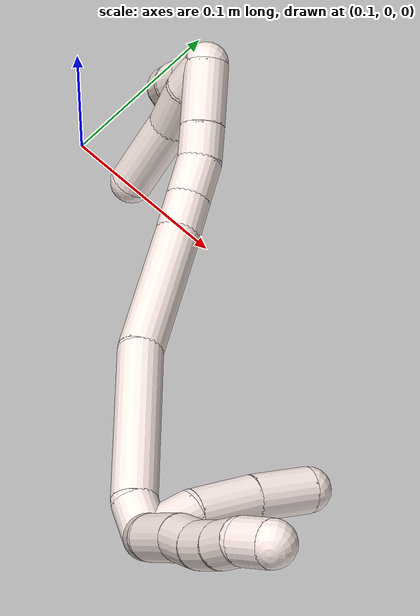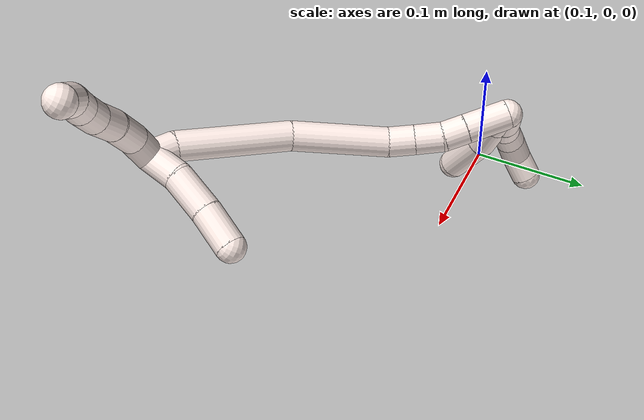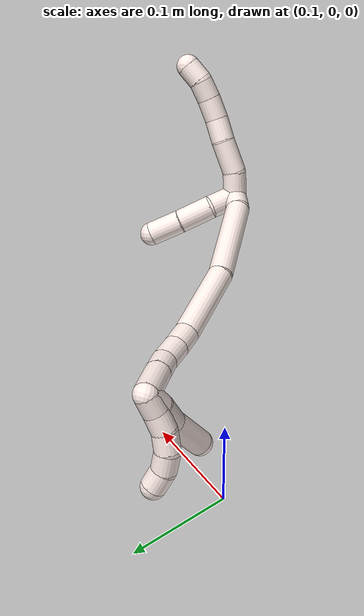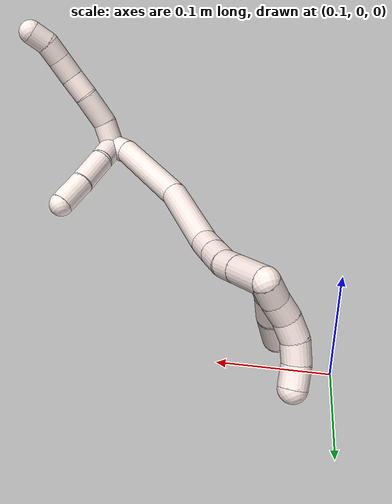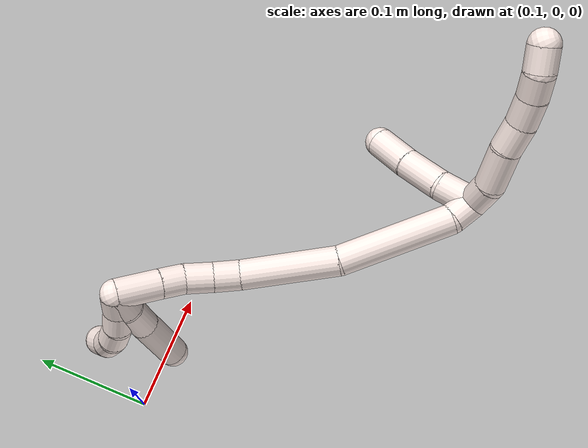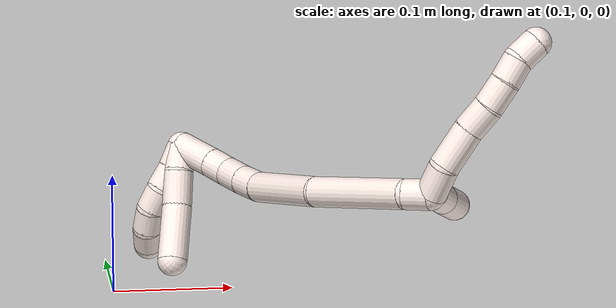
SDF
<sdf version="1.7">
 <world name="default">
  <model name="11">
   <static>0</static>
   <link name="11">
    <collision name="collision-cylinder-e_1_2_8">
     <pose>-0.00081 0.00686 0.011312 -0.545119 -0.061169 0.017103</pose>
     <geometry><cylinder><radius>0.0125</radius><length>0.026508</length></cylinder></geometry>
     <surface>
      <friction><ode><mu>1.16</mu><mu2>1.16</mu2><slip1>0</slip1><slip2>0</slip2></ode></friction>
      <contact><ode><kp>1e+06</kp><kd>1</kd><max_vel>0</max_vel><min_depth>0.001</min_depth></ode></contact>
     </surface>
    </collision>
    <visual name="visual-cylinder-e_1_2_8">
     <pose>-0.00081 0.00686 0.011312 -0.545119 -0.061169 0.017103</pose>
     <geometry><cylinder><radius>0.0125</radius><length>0.026508</length></cylinder></geometry>
     <material><ambient>1 0.933333 0.909804 1</ambient></material>
    </visual>
    <collision name="collision-cylinder-e_2_8_9">
     <pose>0.00216 0.025138 0.035551 -0.72352 0.215764 -0.08192</pose>
     <geometry><cylinder><radius>0.0125</radius><length>0.035316</length></cylinder></geometry>
     <surface>
      <friction><ode><mu>1.16</mu><mu2>1.16</mu2><slip1>0</slip1><slip2>0</slip2></ode></friction>
      <contact><ode><kp>1e+06</kp><kd>1</kd><max_vel>0</max_vel><min_depth>0.001</min_depth></ode></contact>
     </surface>
    </collision>
    <visual name="visual-cylinder-e_2_8_9">
     <pose>0.00216 0.025138 0.035551 -0.72352 0.215764 -0.08192</pose>
     <geometry><cylinder><radius>0.0125</radius><length>0.035316</length></cylinder></geometry>
     <material><ambient>1 0.933333 0.909804 1</ambient></material>
    </visual>
    <collision name="collision-cylinder-e_3_9_10">
     <pose>0.009137 0.042898 0.058335 -0.571664 0.266216 -0.07866</pose>
     <geometry><cylinder><radius>0.0125</radius><length>0.024296</length></cylinder></geometry>
     <surface>
      <friction><ode><mu>1.16</mu><mu2>1.16</mu2><slip1>0</slip1><slip2>0</slip2></ode></friction>
      <contact><ode><kp>1e+06</kp><kd>1</kd><max_vel>0</max_vel><min_depth>0.001</min_depth></ode></contact>
     </surface>
    </collision>
    <visual name="visual-cylinder-e_3_9_10">
     <pose>0.009137 0.042898 0.058335 -0.571664 0.266216 -0.07866</pose>
     <geometry><cylinder><radius>0.0125</radius><length>0.024296</length></cylinder></geometry>
     <material><ambient>1 0.933333 0.909804 1</ambient></material>
    </visual>
    <collision name="collision-cylinder-e_4_10_11">
     <pose>0.014964 0.056933 0.076681 -0.736299 0.225753 -0.087397</pose>
     <geometry><cylinder><radius>0.0125</radius><length>0.02351</length></cylinder></geometry>
     <surface>
      <friction><ode><mu>1.16</mu><mu2>1.16</mu2><slip1>0</slip1><slip2>0</slip2></ode></friction>
      <contact><ode><kp>1e+06</kp><kd>1</kd><max_vel>0</max_vel><min_depth>0.001</min_depth></ode></contact>
     </surface>
    </collision>
    <visual name="visual-cylinder-e_4_10_11">
     <pose>0.014964 0.056933 0.076681 -0.736299 0.225753 -0.087397</pose>
     <geometry><cylinder><radius>0.0125</radius><length>0.02351</length></cylinder></geometry>
     <material><ambient>1 0.933333 0.909804 1</ambient></material>
    </visual>
    <collision name="collision-cylinder-e_5_11_12">
     <pose>0.019856 0.072058 0.091679 -0.85151 0.225004 -0.102381</pose>
     <geometry><cylinder><radius>0.0125</radius><length>0.020268</length></cylinder></geometry>
     <surface>
      <friction><ode><mu>1.16</mu><mu2>1.16</mu2><slip1>0</slip1><slip2>0</slip2></ode></friction>
      <contact><ode><kp>1e+06</kp><kd>1</kd><max_vel>0</max_vel><min_depth>0.001</min_depth></ode></contact>
     </surface>
    </collision>
    <visual name="visual-cylinder-e_5_11_12">
     <pose>0.019856 0.072058 0.091679 -0.85151 0.225004 -0.102381</pose>
     <geometry><cylinder><radius>0.0125</radius><length>0.020268</length></cylinder></geometry>
     <material><ambient>1 0.933333 0.909804 1</ambient></material>
    </visual>
    <collision name="collision-cylinder-e_6_12_6">
     <pose>0.027461 0.086023 0.103644 -0.874973 0.560613 -0.267687</pose>
     <geometry><cylinder><radius>0.0125</radius><length>0.020101</length></cylinder></geometry>
     <surface>
      <friction><ode><mu>1.16</mu><mu2>1.16</mu2><slip1>0</slip1><slip2>0</slip2></ode></friction>
      <contact><ode><kp>1e+06</kp><kd>1</kd><max_vel>0</max_vel><min_depth>0.001</min_depth></ode></contact>
     </surface>
    </collision>
    <visual name="visual-cylinder-e_6_12_6">
     <pose>0.027461 0.086023 0.103644 -0.874973 0.560613 -0.267687</pose>
     <geometry><cylinder><radius>0.0125</radius><length>0.020101</length></cylinder></geometry>
     <material><ambient>1 0.933333 0.909804 1</ambient></material>
    </visual>
    <collision name="collision-cylinder-e_1_2_13">
     <pose>0.007809 0.007717 -0.009701 -2.46964 0.562173 -1.38175</pose>
     <geometry><cylinder><radius>0.0125</radius><length>0.029302</length></cylinder></geometry>
     <surface>
      <friction><ode><mu>1.16</mu><mu2>1.16</mu2><slip1>0</slip1><slip2>0</slip2></ode></friction>
      <contact><ode><kp>1e+06</kp><kd>1</kd><max_vel>0</max_vel><min_depth>0.001</min_depth></ode></contact>
     </surface>
    </collision>
    <visual name="visual-cylinder-e_1_2_13">
     <pose>0.007809 0.007717 -0.009701 -2.46964 0.562173 -1.38175</pose>
     <geometry><cylinder><radius>0.0125</radius><length>0.029302</length></cylinder></geometry>
     <material><ambient>1 0.933333 0.909804 1</ambient></material>
    </visual>
    <collision name="collision-cylinder-e_2_13_14">
     <pose>0.028218 0.02176 -0.030873 -2.63752 0.765972 -2.00412</pose>
     <geometry><cylinder><radius>0.0125</radius><length>0.03635</length></cylinder></geometry>
     <surface>
      <friction><ode><mu>1.16</mu><mu2>1.16</mu2><slip1>0</slip1><slip2>0</slip2></ode></friction>
      <contact><ode><kp>1e+06</kp><kd>1</kd><max_vel>0</max_vel><min_depth>0.001</min_depth></ode></contact>
     </surface>
    </collision>
    <visual name="visual-cylinder-e_2_13_14">
     <pose>0.028218 0.02176 -0.030873 -2.63752 0.765972 -2.00412</pose>
     <geometry><cylinder><radius>0.0125</radius><length>0.03635</length></cylinder></geometry>
     <material><ambient>1 0.933333 0.909804 1</ambient></material>
    </visual>
    <collision name="collision-cylinder-e_3_14_5">
     <pose>0.053685 0.033439 -0.052379 -2.65174 0.84688 -2.12891</pose>
     <geometry><cylinder><radius>0.0125</radius><length>0.034348</length></cylinder></geometry>
     <surface>
      <friction><ode><mu>1.16</mu><mu2>1.16</mu2><slip1>0</slip1><slip2>0</slip2></ode></friction>
      <contact><ode><kp>1e+06</kp><kd>1</kd><max_vel>0</max_vel><min_depth>0.001</min_depth></ode></contact>
     </surface>
    </collision>
    <visual name="visual-cylinder-e_3_14_5">
     <pose>0.053685 0.033439 -0.052379 -2.65174 0.84688 -2.12891</pose>
     <geometry><cylinder><radius>0.0125</radius><length>0.034348</length></cylinder></geometry>
     <material><ambient>1 0.933333 0.909804 1</ambient></material>
    </visual>
    <collision name="collision-cylinder-e_1_2_15">
     <pose>-0.006621 0.002605 -0.008216 -2.8346 -0.654989 2.28691</pose>
     <geometry><cylinder><radius>0.0125</radius><length>0.021737</length></cylinder></geometry>
     <surface>
      <friction><ode><mu>1.16</mu><mu2>1.16</mu2><slip1>0</slip1><slip2>0</slip2></ode></friction>
      <contact><ode><kp>1e+06</kp><kd>1</kd><max_vel>0</max_vel><min_depth>0.001</min_depth></ode></contact>
     </surface>
    </collision>
    <visual name="visual-cylinder-e_1_2_15">
     <pose>-0.006621 0.002605 -0.008216 -2.8346 -0.654989 2.28691</pose>
     <geometry><cylinder><radius>0.0125</radius><length>0.021737</length></cylinder></geometry>
     <material><ambient>1 0.933333 0.909804 1</ambient></material>
    </visual>
    <collision name="collision-cylinder-e_2_15_16">
     <pose>-0.028444 0.022606 -0.057982 -2.74508 -0.325504 1.37047</pose>
     <geometry><cylinder><radius>0.0125</radius><length>0.095081</length></cylinder></geometry>
     <surface>
      <friction><ode><mu>1.16</mu><mu2>1.16</mu2><slip1>0</slip1><slip2>0</slip2></ode></friction>
      <contact><ode><kp>1e+06</kp><kd>1</kd><max_vel>0</max_vel><min_depth>0.001</min_depth></ode></contact>
     </surface>
    </collision>
    <visual name="visual-cylinder-e_2_15_16">
     <pose>-0.028444 0.022606 -0.057982 -2.74508 -0.325504 1.37047</pose>
     <geometry><cylinder><radius>0.0125</radius><length>0.095081</length></cylinder></geometry>
     <material><ambient>1 0.933333 0.909804 1</ambient></material>
    </visual>
    <collision name="collision-cylinder-e_3_16_17">
     <pose>-0.048397 0.058384 -0.135104 -2.66465 -0.118066 0.47698</pose>
     <geometry><cylinder><radius>0.0125</radius><length>0.080643</length></cylinder></geometry>
     <surface>
      <friction><ode><mu>1.16</mu><mu2>1.16</mu2><slip1>0</slip1><slip2>0</slip2></ode></friction>
      <contact><ode><kp>1e+06</kp><kd>1</kd><max_vel>0</max_vel><min_depth>0.001</min_depth></ode></contact>
     </surface>
    </collision>
    <visual name="visual-cylinder-e_3_16_17">
     <pose>-0.048397 0.058384 -0.135104 -2.66465 -0.118066 0.47698</pose>
     <geometry><cylinder><radius>0.0125</radius><length>0.080643</length></cylinder></geometry>
     <material><ambient>1 0.933333 0.909804 1</ambient></material>
    </visual>
    <collision name="collision-cylinder-e_4_17_18">
     <pose>-0.055196 0.083624 -0.179226 -2.46552 -0.184918 0.515794</pose>
     <geometry><cylinder><radius>0.0125</radius><length>0.022301</length></cylinder></geometry>
     <surface>
      <friction><ode><mu>1.16</mu><mu2>1.16</mu2><slip1>0</slip1><slip2>0</slip2></ode></friction>
      <contact><ode><kp>1e+06</kp><kd>1</kd><max_vel>0</max_vel><min_depth>0.001</min_depth></ode></contact>
     </surface>
    </collision>
    <visual name="visual-cylinder-e_4_17_18">
     <pose>-0.055196 0.083624 -0.179226 -2.46552 -0.184918 0.515794</pose>
     <geometry><cylinder><radius>0.0125</radius><length>0.022301</length></cylinder></geometry>
     <material><ambient>1 0.933333 0.909804 1</ambient></material>
    </visual>
    <collision name="collision-cylinder-e_5_18_19">
     <pose>-0.059385 0.09814 -0.196466 -2.41929 -0.182529 0.475425</pose>
     <geometry><cylinder><radius>0.0125</radius><length>0.023557</length></cylinder></geometry>
     <surface>
      <friction><ode><mu>1.16</mu><mu2>1.16</mu2><slip1>0</slip1><slip2>0</slip2></ode></friction>
      <contact><ode><kp>1e+06</kp><kd>1</kd><max_vel>0</max_vel><min_depth>0.001</min_depth></ode></contact>
     </surface>
    </collision>
    <visual name="visual-cylinder-e_5_18_19">
     <pose>-0.059385 0.09814 -0.196466 -2.41929 -0.182529 0.475425</pose>
     <geometry><cylinder><radius>0.0125</radius><length>0.023557</length></cylinder></geometry>
     <material><ambient>1 0.933333 0.909804 1</ambient></material>
    </visual>
    <collision name="collision-cylinder-e_6_19_20">
     <pose>-0.065511 0.112378 -0.211584 -2.34446 -0.409098 0.915473</pose>
     <geometry><cylinder><radius>0.0125</radius><length>0.020053</length></cylinder></geometry>
     <surface>
      <friction><ode><mu>1.16</mu><mu2>1.16</mu2><slip1>0</slip1><slip2>0</slip2></ode></friction>
      <contact><ode><kp>1e+06</kp><kd>1</kd><max_vel>0</max_vel><min_depth>0.001</min_depth></ode></contact>
     </surface>
    </collision>
    <visual name="visual-cylinder-e_6_19_20">
     <pose>-0.065511 0.112378 -0.211584 -2.34446 -0.409098 0.915473</pose>
     <geometry><cylinder><radius>0.0125</radius><length>0.020053</length></cylinder></geometry>
     <material><ambient>1 0.933333 0.909804 1</ambient></material>
    </visual>
    <collision name="collision-cylinder-e_7_20_1">
     <pose>-0.076934 0.130694 -0.229945 -2.36453 -0.41801 0.956142</pose>
     <geometry><cylinder><radius>0.0125</radius><length>0.036628</length></cylinder></geometry>
     <surface>
      <friction><ode><mu>1.16</mu><mu2>1.16</mu2><slip1>0</slip1><slip2>0</slip2></ode></friction>
      <contact><ode><kp>1e+06</kp><kd>1</kd><max_vel>0</max_vel><min_depth>0.001</min_depth></ode></contact>
     </surface>
    </collision>
    <visual name="visual-cylinder-e_7_20_1">
     <pose>-0.076934 0.130694 -0.229945 -2.36453 -0.41801 0.956142</pose>
     <geometry><cylinder><radius>0.0125</radius><length>0.036628</length></cylinder></geometry>
     <material><ambient>1 0.933333 0.909804 1</ambient></material>
    </visual>
    <collision name="collision-cylinder-e_1_1_21">
     <pose>-0.085426 0.134508 -0.247889 2.21991 -0.106014 -0.212916</pose>
     <geometry><cylinder><radius>0.0125</radius><length>0.02</length></cylinder></geometry>
     <surface>
      <friction><ode><mu>1.16</mu><mu2>1.16</mu2><slip1>0</slip1><slip2>0</slip2></ode></friction>
      <contact><ode><kp>1e+06</kp><kd>1</kd><max_vel>0</max_vel><min_depth>0.001</min_depth></ode></contact>
     </surface>
    </collision>
    <visual name="visual-cylinder-e_1_1_21">
     <pose>-0.085426 0.134508 -0.247889 2.21991 -0.106014 -0.212916</pose>
     <geometry><cylinder><radius>0.0125</radius><length>0.02</length></cylinder></geometry>
     <material><ambient>1 0.933333 0.909804 1</ambient></material>
    </visual>
    <collision name="collision-cylinder-e_2_21_22">
     <pose>-0.088477 0.11947 -0.260636 2.32879 -0.20064 -0.459528</pose>
     <geometry><cylinder><radius>0.0125</radius><length>0.02</length></cylinder></geometry>
     <surface>
      <friction><ode><mu>1.16</mu><mu2>1.16</mu2><slip1>0</slip1><slip2>0</slip2></ode></friction>
      <contact><ode><kp>1e+06</kp><kd>1</kd><max_vel>0</max_vel><min_depth>0.001</min_depth></ode></contact>
     </surface>
    </collision>
    <visual name="visual-cylinder-e_2_21_22">
     <pose>-0.088477 0.11947 -0.260636 2.32879 -0.20064 -0.459528</pose>
     <geometry><cylinder><radius>0.0125</radius><length>0.02</length></cylinder></geometry>
     <material><ambient>1 0.933333 0.909804 1</ambient></material>
    </visual>
    <collision name="collision-cylinder-e_3_22_23">
     <pose>-0.090671 0.106688 -0.275611 2.53914 -0.020094 -0.064657</pose>
     <geometry><cylinder><radius>0.0125</radius><length>0.02</length></cylinder></geometry>
     <surface>
      <friction><ode><mu>1.16</mu><mu2>1.16</mu2><slip1>0</slip1><slip2>0</slip2></ode></friction>
      <contact><ode><kp>1e+06</kp><kd>1</kd><max_vel>0</max_vel><min_depth>0.001</min_depth></ode></contact>
     </surface>
    </collision>
    <visual name="visual-cylinder-e_3_22_23">
     <pose>-0.090671 0.106688 -0.275611 2.53914 -0.020094 -0.064657</pose>
     <geometry><cylinder><radius>0.0125</radius><length>0.02</length></cylinder></geometry>
     <material><ambient>1 0.933333 0.909804 1</ambient></material>
    </visual>
    <collision name="collision-cylinder-e_4_23_24">
     <pose>-0.0879 0.096485 -0.29225 2.64636 0.3018 1.08302</pose>
     <geometry><cylinder><radius>0.0125</radius><length>0.02</length></cylinder></geometry>
     <surface>
      <friction><ode><mu>1.16</mu><mu2>1.16</mu2><slip1>0</slip1><slip2>0</slip2></ode></friction>
      <contact><ode><kp>1e+06</kp><kd>1</kd><max_vel>0</max_vel><min_depth>0.001</min_depth></ode></contact>
     </surface>
    </collision>
    <visual name="visual-cylinder-e_4_23_24">
     <pose>-0.0879 0.096485 -0.29225 2.64636 0.3018 1.08302</pose>
     <geometry><cylinder><radius>0.0125</radius><length>0.02</length></cylinder></geometry>
     <material><ambient>1 0.933333 0.909804 1</ambient></material>
    </visual>
    <collision name="collision-cylinder-e_5_24_4">
     <pose>-0.079692 0.089643 -0.308853 2.86766 0.550989 2.23426</pose>
     <geometry><cylinder><radius>0.0125</radius><length>0.02</length></cylinder></geometry>
     <surface>
      <friction><ode><mu>1.16</mu><mu2>1.16</mu2><slip1>0</slip1><slip2>0</slip2></ode></friction>
      <contact><ode><kp>1e+06</kp><kd>1</kd><max_vel>0</max_vel><min_depth>0.001</min_depth></ode></contact>
     </surface>
    </collision>
    <visual name="visual-cylinder-e_5_24_4">
     <pose>-0.079692 0.089643 -0.308853 2.86766 0.550989 2.23426</pose>
     <geometry><cylinder><radius>0.0125</radius><length>0.02</length></cylinder></geometry>
     <material><ambient>1 0.933333 0.909804 1</ambient></material>
    </visual>
    <collision name="collision-cylinder-e_1_1_25">
     <pose>-0.08463 0.131632 -0.244693 1.82586 -0.023448 -0.030345</pose>
     <geometry><cylinder><radius>0.0125</radius><length>0.022324</length></cylinder></geometry>
     <surface>
      <friction><ode><mu>1.16</mu><mu2>1.16</mu2><slip1>0</slip1><slip2>0</slip2></ode></friction>
      <contact><ode><kp>1e+06</kp><kd>1</kd><max_vel>0</max_vel><min_depth>0.001</min_depth></ode></contact>
     </surface>
    </collision>
    <visual name="visual-cylinder-e_1_1_25">
     <pose>-0.08463 0.131632 -0.244693 1.82586 -0.023448 -0.030345</pose>
     <geometry><cylinder><radius>0.0125</radius><length>0.022324</length></cylinder></geometry>
     <material><ambient>1 0.933333 0.909804 1</ambient></material>
    </visual>
    <collision name="collision-cylinder-e_2_25_26">
     <pose>-0.082963 0.107055 -0.252482 1.91716 0.130861 0.18608</pose>
     <geometry><cylinder><radius>0.0125</radius><length>0.029549</length></cylinder></geometry>
     <surface>
      <friction><ode><mu>1.16</mu><mu2>1.16</mu2><slip1>0</slip1><slip2>0</slip2></ode></friction>
      <contact><ode><kp>1e+06</kp><kd>1</kd><max_vel>0</max_vel><min_depth>0.001</min_depth></ode></contact>
     </surface>
    </collision>
    <visual name="visual-cylinder-e_2_25_26">
     <pose>-0.082963 0.107055 -0.252482 1.91716 0.130861 0.18608</pose>
     <geometry><cylinder><radius>0.0125</radius><length>0.029549</length></cylinder></geometry>
     <material><ambient>1 0.933333 0.909804 1</ambient></material>
    </visual>
    <collision name="collision-cylinder-e_3_26_3">
     <pose>-0.08076 0.069732 -0.262413 1.77835 0.011459 0.014124</pose>
     <geometry><cylinder><radius>0.0125</radius><length>0.048126</length></cylinder></geometry>
     <surface>
      <friction><ode><mu>1.16</mu><mu2>1.16</mu2><slip1>0</slip1><slip2>0</slip2></ode></friction>
      <contact><ode><kp>1e+06</kp><kd>1</kd><max_vel>0</max_vel><min_depth>0.001</min_depth></ode></contact>
     </surface>
    </collision>
    <visual name="visual-cylinder-e_3_26_3">
     <pose>-0.08076 0.069732 -0.262413 1.77835 0.011459 0.014124</pose>
     <geometry><cylinder><radius>0.0125</radius><length>0.048126</length></cylinder></geometry>
     <material><ambient>1 0.933333 0.909804 1</ambient></material>
    </visual>
    <collision name="collision-sphere-3">
     <pose>-0.080484 0.046186 -0.267371 0 -0 0</pose>
     <geometry><sphere><radius>0.0125</radius></sphere></geometry>
     <surface>
      <friction><ode><mu>1.16</mu><mu2>1.16</mu2><slip1>0</slip1><slip2>0</slip2></ode></friction>
      <contact><ode><kp>1e+06</kp><kd>1</kd><max_vel>0</max_vel><min_depth>0.001</min_depth></ode></contact>
     </surface>
    </collision>
    <visual name="visual-sphere-3">
     <pose>-0.080484 0.046186 -0.267371 0 -0 0</pose>
     <geometry><sphere><radius>0.0125</radius></sphere></geometry>
     <material><ambient>1 0.933333 0.909804 1</ambient></material>
    </visual>
    <collision name="collision-sphere-26">
     <pose>-0.081036 0.093277 -0.257455 0 -0 0</pose>
     <geometry><sphere><radius>0.0125</radius></sphere></geometry>
     <surface>
      <friction><ode><mu>1.16</mu><mu2>1.16</mu2><slip1>0</slip1><slip2>0</slip2></ode></friction>
      <contact><ode><kp>1e+06</kp><kd>1</kd><max_vel>0</max_vel><min_depth>0.001</min_depth></ode></contact>
     </surface>
    </collision>
    <visual name="visual-sphere-26">
     <pose>-0.081036 0.093277 -0.257455 0 -0 0</pose>
     <geometry><sphere><radius>0.0125</radius></sphere></geometry>
     <material><ambient>1 0.933333 0.909804 1</ambient></material>
    </visual>
    <collision name="collision-sphere-25">
     <pose>-0.084891 0.120834 -0.247509 0 -0 0</pose>
     <geometry><sphere><radius>0.0125</radius></sphere></geometry>
     <surface>
      <friction><ode><mu>1.16</mu><mu2>1.16</mu2><slip1>0</slip1><slip2>0</slip2></ode></friction>
      <contact><ode><kp>1e+06</kp><kd>1</kd><max_vel>0</max_vel><min_depth>0.001</min_depth></ode></contact>
     </surface>
    </collision>
    <visual name="visual-sphere-25">
     <pose>-0.084891 0.120834 -0.247509 0 -0 0</pose>
     <geometry><sphere><radius>0.0125</radius></sphere></geometry>
     <material><ambient>1 0.933333 0.909804 1</ambient></material>
    </visual>
    <collision name="collision-sphere-4">
     <pose>-0.074457 0.087338 -0.317056 0 -0 0</pose>
     <geometry><sphere><radius>0.0125</radius></sphere></geometry>
     <surface>
      <friction><ode><mu>1.16</mu><mu2>1.16</mu2><slip1>0</slip1><slip2>0</slip2></ode></friction>
      <contact><ode><kp>1e+06</kp><kd>1</kd><max_vel>0</max_vel><min_depth>0.001</min_depth></ode></contact>
     </surface>
    </collision>
    <visual name="visual-sphere-4">
     <pose>-0.074457 0.087338 -0.317056 0 -0 0</pose>
     <geometry><sphere><radius>0.0125</radius></sphere></geometry>
     <material><ambient>1 0.933333 0.909804 1</ambient></material>
    </visual>
    <collision name="collision-sphere-24">
     <pose>-0.084927 0.091948 -0.300651 0 -0 0</pose>
     <geometry><sphere><radius>0.0125</radius></sphere></geometry>
     <surface>
      <friction><ode><mu>1.16</mu><mu2>1.16</mu2><slip1>0</slip1><slip2>0</slip2></ode></friction>
      <contact><ode><kp>1e+06</kp><kd>1</kd><max_vel>0</max_vel><min_depth>0.001</min_depth></ode></contact>
     </surface>
    </collision>
    <visual name="visual-sphere-24">
     <pose>-0.084927 0.091948 -0.300651 0 -0 0</pose>
     <geometry><sphere><radius>0.0125</radius></sphere></geometry>
     <material><ambient>1 0.933333 0.909804 1</ambient></material>
    </visual>
    <collision name="collision-sphere-23">
     <pose>-0.090872 0.101023 -0.283849 0 -0 0</pose>
     <geometry><sphere><radius>0.0125</radius></sphere></geometry>
     <surface>
      <friction><ode><mu>1.16</mu><mu2>1.16</mu2><slip1>0</slip1><slip2>0</slip2></ode></friction>
      <contact><ode><kp>1e+06</kp><kd>1</kd><max_vel>0</max_vel><min_depth>0.001</min_depth></ode></contact>
     </surface>
    </collision>
    <visual name="visual-sphere-23">
     <pose>-0.090872 0.101023 -0.283849 0 -0 0</pose>
     <geometry><sphere><radius>0.0125</radius></sphere></geometry>
     <material><ambient>1 0.933333 0.909804 1</ambient></material>
    </visual>
    <collision name="collision-sphere-22">
     <pose>-0.09047 0.112354 -0.267373 0 -0 0</pose>
     <geometry><sphere><radius>0.0125</radius></sphere></geometry>
     <surface>
      <friction><ode><mu>1.16</mu><mu2>1.16</mu2><slip1>0</slip1><slip2>0</slip2></ode></friction>
      <contact><ode><kp>1e+06</kp><kd>1</kd><max_vel>0</max_vel><min_depth>0.001</min_depth></ode></contact>
     </surface>
    </collision>
    <visual name="visual-sphere-22">
     <pose>-0.09047 0.112354 -0.267373 0 -0 0</pose>
     <geometry><sphere><radius>0.0125</radius></sphere></geometry>
     <material><ambient>1 0.933333 0.909804 1</ambient></material>
    </visual>
    <collision name="collision-sphere-21">
     <pose>-0.086484 0.126587 -0.2539 0 -0 0</pose>
     <geometry><sphere><radius>0.0125</radius></sphere></geometry>
     <surface>
      <friction><ode><mu>1.16</mu><mu2>1.16</mu2><slip1>0</slip1><slip2>0</slip2></ode></friction>
      <contact><ode><kp>1e+06</kp><kd>1</kd><max_vel>0</max_vel><min_depth>0.001</min_depth></ode></contact>
     </surface>
    </collision>
    <visual name="visual-sphere-21">
     <pose>-0.086484 0.126587 -0.2539 0 -0 0</pose>
     <geometry><sphere><radius>0.0125</radius></sphere></geometry>
     <material><ambient>1 0.933333 0.909804 1</ambient></material>
    </visual>
    <collision name="collision-sphere-1">
     <pose>-0.084368 0.14243 -0.241878 0 -0 0</pose>
     <geometry><sphere><radius>0.0125</radius></sphere></geometry>
     <surface>
      <friction><ode><mu>1.16</mu><mu2>1.16</mu2><slip1>0</slip1><slip2>0</slip2></ode></friction>
      <contact><ode><kp>1e+06</kp><kd>1</kd><max_vel>0</max_vel><min_depth>0.001</min_depth></ode></contact>
     </surface>
    </collision>
    <visual name="visual-sphere-1">
     <pose>-0.084368 0.14243 -0.241878 0 -0 0</pose>
     <geometry><sphere><radius>0.0125</radius></sphere></geometry>
     <material><ambient>1 0.933333 0.909804 1</ambient></material>
    </visual>
    <collision name="collision-sphere-12">
     <pose>0.022117 0.07949 0.098187 0 -0 0</pose>
     <geometry><sphere><radius>0.0125</radius></sphere></geometry>
     <surface>
      <friction><ode><mu>1.16</mu><mu2>1.16</mu2><slip1>0</slip1><slip2>0</slip2></ode></friction>
      <contact><ode><kp>1e+06</kp><kd>1</kd><max_vel>0</max_vel><min_depth>0.001</min_depth></ode></contact>
     </surface>
    </collision>
    <visual name="visual-sphere-12">
     <pose>0.022117 0.07949 0.098187 0 -0 0</pose>
     <geometry><sphere><radius>0.0125</radius></sphere></geometry>
     <material><ambient>1 0.933333 0.909804 1</ambient></material>
    </visual>
    <collision name="collision-sphere-11">
     <pose>0.017595 0.064627 0.08517 0 -0 0</pose>
     <geometry><sphere><radius>0.0125</radius></sphere></geometry>
     <surface>
      <friction><ode><mu>1.16</mu><mu2>1.16</mu2><slip1>0</slip1><slip2>0</slip2></ode></friction>
      <contact><ode><kp>1e+06</kp><kd>1</kd><max_vel>0</max_vel><min_depth>0.001</min_depth></ode></contact>
     </surface>
    </collision>
    <visual name="visual-sphere-11">
     <pose>0.017595 0.064627 0.08517 0 -0 0</pose>
     <geometry><sphere><radius>0.0125</radius></sphere></geometry>
     <material><ambient>1 0.933333 0.909804 1</ambient></material>
    </visual>
    <collision name="collision-sphere-10">
     <pose>0.012332 0.049239 0.068192 0 -0 0</pose>
     <geometry><sphere><radius>0.0125</radius></sphere></geometry>
     <surface>
      <friction><ode><mu>1.16</mu><mu2>1.16</mu2><slip1>0</slip1><slip2>0</slip2></ode></friction>
      <contact><ode><kp>1e+06</kp><kd>1</kd><max_vel>0</max_vel><min_depth>0.001</min_depth></ode></contact>
     </surface>
    </collision>
    <visual name="visual-sphere-10">
     <pose>0.012332 0.049239 0.068192 0 -0 0</pose>
     <geometry><sphere><radius>0.0125</radius></sphere></geometry>
     <material><ambient>1 0.933333 0.909804 1</ambient></material>
    </visual>
    <collision name="collision-sphere-9">
     <pose>0.005941 0.036557 0.048479 0 -0 0</pose>
     <geometry><sphere><radius>0.0125</radius></sphere></geometry>
     <surface>
      <friction><ode><mu>1.16</mu><mu2>1.16</mu2><slip1>0</slip1><slip2>0</slip2></ode></friction>
      <contact><ode><kp>1e+06</kp><kd>1</kd><max_vel>0</max_vel><min_depth>0.001</min_depth></ode></contact>
     </surface>
    </collision>
    <visual name="visual-sphere-9">
     <pose>0.005941 0.036557 0.048479 0 -0 0</pose>
     <geometry><sphere><radius>0.0125</radius></sphere></geometry>
     <material><ambient>1 0.933333 0.909804 1</ambient></material>
    </visual>
    <collision name="collision-sphere-2">
     <geometry><sphere><radius>0.0125</radius></sphere></geometry>
     <surface>
      <friction><ode><mu>1.16</mu><mu2>1.16</mu2><slip1>0</slip1><slip2>0</slip2></ode></friction>
      <contact><ode><kp>1e+06</kp><kd>1</kd><max_vel>0</max_vel><min_depth>0.001</min_depth></ode></contact>
     </surface>
    </collision>
    <visual name="visual-sphere-2">
     <geometry><sphere><radius>0.0125</radius></sphere></geometry>
     <material><ambient>1 0.933333 0.909804 1</ambient></material>
    </visual>
    <collision name="collision-sphere-19">
     <pose>-0.061523 0.105797 -0.205156 0 -0 0</pose>
     <geometry><sphere><radius>0.0125</radius></sphere></geometry>
     <surface>
      <friction><ode><mu>1.16</mu><mu2>1.16</mu2><slip1>0</slip1><slip2>0</slip2></ode></friction>
      <contact><ode><kp>1e+06</kp><kd>1</kd><max_vel>0</max_vel><min_depth>0.001</min_depth></ode></contact>
     </surface>
    </collision>
    <visual name="visual-sphere-19">
     <pose>-0.061523 0.105797 -0.205156 0 -0 0</pose>
     <geometry><sphere><radius>0.0125</radius></sphere></geometry>
     <material><ambient>1 0.933333 0.909804 1</ambient></material>
    </visual>
    <collision name="collision-sphere-8">
     <pose>-0.00162 0.013719 0.022624 0 -0 0</pose>
     <geometry><sphere><radius>0.0125</radius></sphere></geometry>
     <surface>
      <friction><ode><mu>1.16</mu><mu2>1.16</mu2><slip1>0</slip1><slip2>0</slip2></ode></friction>
      <contact><ode><kp>1e+06</kp><kd>1</kd><max_vel>0</max_vel><min_depth>0.001</min_depth></ode></contact>
     </surface>
    </collision>
    <visual name="visual-sphere-8">
     <pose>-0.00162 0.013719 0.022624 0 -0 0</pose>
     <geometry><sphere><radius>0.0125</radius></sphere></geometry>
     <material><ambient>1 0.933333 0.909804 1</ambient></material>
    </visual>
    <collision name="collision-sphere-6">
     <pose>0.032805 0.092557 0.1091 0 -0 0</pose>
     <geometry><sphere><radius>0.0125</radius></sphere></geometry>
     <surface>
      <friction><ode><mu>1.16</mu><mu2>1.16</mu2><slip1>0</slip1><slip2>0</slip2></ode></friction>
      <contact><ode><kp>1e+06</kp><kd>1</kd><max_vel>0</max_vel><min_depth>0.001</min_depth></ode></contact>
     </surface>
    </collision>
    <visual name="visual-sphere-6">
     <pose>0.032805 0.092557 0.1091 0 -0 0</pose>
     <geometry><sphere><radius>0.0125</radius></sphere></geometry>
     <material><ambient>1 0.933333 0.909804 1</ambient></material>
    </visual>
    <collision name="collision-sphere-13">
     <pose>0.015619 0.015434 -0.019403 0 -0 0</pose>
     <geometry><sphere><radius>0.0125</radius></sphere></geometry>
     <surface>
      <friction><ode><mu>1.16</mu><mu2>1.16</mu2><slip1>0</slip1><slip2>0</slip2></ode></friction>
      <contact><ode><kp>1e+06</kp><kd>1</kd><max_vel>0</max_vel><min_depth>0.001</min_depth></ode></contact>
     </surface>
    </collision>
    <visual name="visual-sphere-13">
     <pose>0.015619 0.015434 -0.019403 0 -0 0</pose>
     <geometry><sphere><radius>0.0125</radius></sphere></geometry>
     <material><ambient>1 0.933333 0.909804 1</ambient></material>
    </visual>
    <collision name="collision-sphere-14">
     <pose>0.040818 0.028087 -0.042342 0 -0 0</pose>
     <geometry><sphere><radius>0.0125</radius></sphere></geometry>
     <surface>
      <friction><ode><mu>1.16</mu><mu2>1.16</mu2><slip1>0</slip1><slip2>0</slip2></ode></friction>
      <contact><ode><kp>1e+06</kp><kd>1</kd><max_vel>0</max_vel><min_depth>0.001</min_depth></ode></contact>
     </surface>
    </collision>
    <visual name="visual-sphere-14">
     <pose>0.040818 0.028087 -0.042342 0 -0 0</pose>
     <geometry><sphere><radius>0.0125</radius></sphere></geometry>
     <material><ambient>1 0.933333 0.909804 1</ambient></material>
    </visual>
    <collision name="collision-sphere-5">
     <pose>0.066552 0.038791 -0.062416 0 -0 0</pose>
     <geometry><sphere><radius>0.0125</radius></sphere></geometry>
     <surface>
      <friction><ode><mu>1.16</mu><mu2>1.16</mu2><slip1>0</slip1><slip2>0</slip2></ode></friction>
      <contact><ode><kp>1e+06</kp><kd>1</kd><max_vel>0</max_vel><min_depth>0.001</min_depth></ode></contact>
     </surface>
    </collision>
    <visual name="visual-sphere-5">
     <pose>0.066552 0.038791 -0.062416 0 -0 0</pose>
     <geometry><sphere><radius>0.0125</radius></sphere></geometry>
     <material><ambient>1 0.933333 0.909804 1</ambient></material>
    </visual>
    <collision name="collision-sphere-15">
     <pose>-0.013241 0.00521 -0.016433 0 -0 0</pose>
     <geometry><sphere><radius>0.0125</radius></sphere></geometry>
     <surface>
      <friction><ode><mu>1.16</mu><mu2>1.16</mu2><slip1>0</slip1><slip2>0</slip2></ode></friction>
      <contact><ode><kp>1e+06</kp><kd>1</kd><max_vel>0</max_vel><min_depth>0.001</min_depth></ode></contact>
     </surface>
    </collision>
    <visual name="visual-sphere-15">
     <pose>-0.013241 0.00521 -0.016433 0 -0 0</pose>
     <geometry><sphere><radius>0.0125</radius></sphere></geometry>
     <material><ambient>1 0.933333 0.909804 1</ambient></material>
    </visual>
    <collision name="collision-sphere-16">
     <pose>-0.043647 0.040002 -0.099532 0 -0 0</pose>
     <geometry><sphere><radius>0.0125</radius></sphere></geometry>
     <surface>
      <friction><ode><mu>1.16</mu><mu2>1.16</mu2><slip1>0</slip1><slip2>0</slip2></ode></friction>
      <contact><ode><kp>1e+06</kp><kd>1</kd><max_vel>0</max_vel><min_depth>0.001</min_depth></ode></contact>
     </surface>
    </collision>
    <visual name="visual-sphere-16">
     <pose>-0.043647 0.040002 -0.099532 0 -0 0</pose>
     <geometry><sphere><radius>0.0125</radius></sphere></geometry>
     <material><ambient>1 0.933333 0.909804 1</ambient></material>
    </visual>
    <collision name="collision-sphere-17">
     <pose>-0.053146 0.076765 -0.170676 0 -0 0</pose>
     <geometry><sphere><radius>0.0125</radius></sphere></geometry>
     <surface>
      <friction><ode><mu>1.16</mu><mu2>1.16</mu2><slip1>0</slip1><slip2>0</slip2></ode></friction>
      <contact><ode><kp>1e+06</kp><kd>1</kd><max_vel>0</max_vel><min_depth>0.001</min_depth></ode></contact>
     </surface>
    </collision>
    <visual name="visual-sphere-17">
     <pose>-0.053146 0.076765 -0.170676 0 -0 0</pose>
     <geometry><sphere><radius>0.0125</radius></sphere></geometry>
     <material><ambient>1 0.933333 0.909804 1</ambient></material>
    </visual>
    <collision name="collision-sphere-18">
     <pose>-0.057247 0.090482 -0.187775 0 -0 0</pose>
     <geometry><sphere><radius>0.0125</radius></sphere></geometry>
     <surface>
      <friction><ode><mu>1.16</mu><mu2>1.16</mu2><slip1>0</slip1><slip2>0</slip2></ode></friction>
      <contact><ode><kp>1e+06</kp><kd>1</kd><max_vel>0</max_vel><min_depth>0.001</min_depth></ode></contact>
     </surface>
    </collision>
    <visual name="visual-sphere-18">
     <pose>-0.057247 0.090482 -0.187775 0 -0 0</pose>
     <geometry><sphere><radius>0.0125</radius></sphere></geometry>
     <material><ambient>1 0.933333 0.909804 1</ambient></material>
    </visual>
    <collision name="collision-sphere-20">
     <pose>-0.069499 0.118958 -0.218012 0 -0 0</pose>
     <geometry><sphere><radius>0.0125</radius></sphere></geometry>
     <surface>
      <friction><ode><mu>1.16</mu><mu2>1.16</mu2><slip1>0</slip1><slip2>0</slip2></ode></friction>
      <contact><ode><kp>1e+06</kp><kd>1</kd><max_vel>0</max_vel><min_depth>0.001</min_depth></ode></contact>
     </surface>
    </collision>
    <visual name="visual-sphere-20">
     <pose>-0.069499 0.118958 -0.218012 0 -0 0</pose>
     <geometry><sphere><radius>0.0125</radius></sphere></geometry>
     <material><ambient>1 0.933333 0.909804 1</ambient></material>
    </visual>
    <inertial>
     <pose>-0.034269 0.063108 -0.114164 0 -0 0</pose>
     <mass>0.75</mass>
     <inertia>
      <ixx>0.000187</ixx>
      <ixy>0</ixy>
      <ixz>0</ixz>
      <iyy>7.1e-05</iyy>
      <iyz>0</iyz>
      <izz>-5.3e-05</izz>
     </inertia>
    </inertial>
   </link>
   <pose>0.338724 -0.193614 0.125718 0.882168 0.351167 0.320847</pose>
  </model>
 </world>
</sdf>
